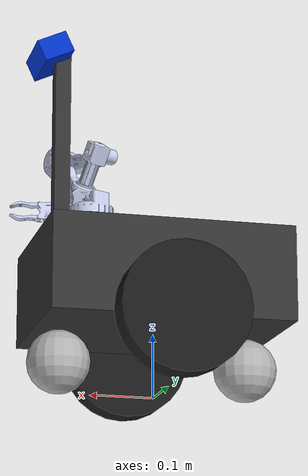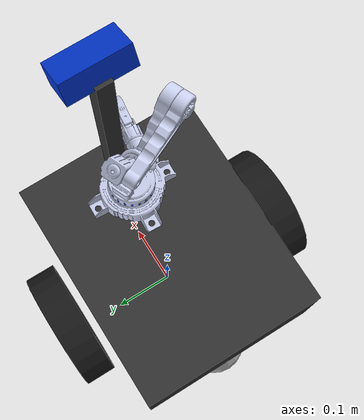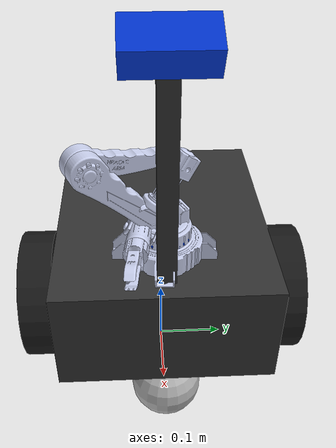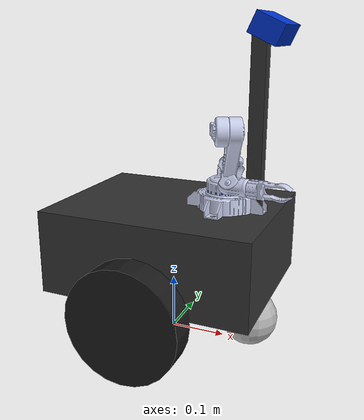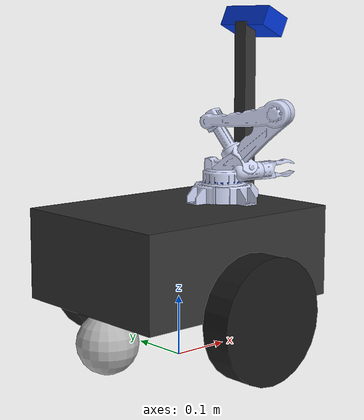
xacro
<?xml version="1.0"?>
<robot xmlns:xacro="http://www.ros.org/wiki/xacro" name="mobile_manipulator">

  <!-- Disable world and mock ros2_control from the arm xacro;
       we provide our own gz ros2_control block here. -->
  <xacro:arg name="include_world"        default="false"/>
  <xacro:arg name="include_ros2_control" default="false"/>

  <!-- Mobile base (kinematics + sensors + gz sensor plugins) -->
  <xacro:include filename="$(find mm_bringup)/urdf/mobile_base.urdf.xacro"/>

  <!-- Arm (kinematics only: no world link, no ros2_control block) -->
  <xacro:include filename="$(find robotic_arm_description)/urdf/robotic_arm.urdf.xacro"/>

  <joint name="arm_mount_joint" type="fixed">
    <origin xyz="0.10 0 0.029710" rpy="0.129355 -0.057284 -0.003711"/>
    <parent link="chassis_top_link"/>
    <child  link="base_link"/>
  </joint>

  <!-- ═══════ gz_ros2_control: single hardware interface for everything ═══ -->
  <ros2_control name="mobile_manipulator_gz" type="system">
    <hardware>
      <plugin>gz_ros2_control/GazeboSimSystem</plugin>
    </hardware>

    <!-- Drive wheels (diff_drive_controller uses velocity commands) -->
    <joint name="left_wheel_joint">
      <command_interface name="velocity"/>
      <state_interface name="position"/>
      <state_interface name="velocity"/>
    </joint>
    <joint name="right_wheel_joint">
      <command_interface name="velocity"/>
      <state_interface name="position"/>
      <state_interface name="velocity"/>
    </joint>

    <!-- Passive casters: state only so JSB publishes them -->
    <joint name="front_caster_joint">
      <state_interface name="position"/>
      <state_interface name="velocity"/>
    </joint>
    <joint name="rear_caster_joint">
      <state_interface name="position"/>
      <state_interface name="velocity"/>
    </joint>

    <!-- Arm joints (joint_trajectory_controller) -->
    <joint name="joint0">
      <command_interface name="position">
        <param name="min">-3.14</param><param name="max">3.14</param>
      </command_interface>
      <state_interface name="position"><param name="initial_value">0.0</param></state_interface>
      <state_interface name="velocity"><param name="initial_value">0.0</param></state_interface>
    </joint>
    <joint name="joint1">
      <command_interface name="position">
        <param name="min">-3.14</param><param name="max">3.14</param>
      </command_interface>
      <state_interface name="position"><param name="initial_value">0.0</param></state_interface>
      <state_interface name="velocity"><param name="initial_value">0.0</param></state_interface>
    </joint>
    <joint name="joint2">
      <command_interface name="position">
        <param name="min">-3.14</param><param name="max">3.14</param>
      </command_interface>
      <state_interface name="position"><param name="initial_value">0.0</param></state_interface>
      <state_interface name="velocity"><param name="initial_value">0.0</param></state_interface>
    </joint>
    <joint name="joint3">
      <command_interface name="position">
        <param name="min">-3.14</param><param name="max">3.14</param>
      </command_interface>
      <state_interface name="position"><param name="initial_value">0.0</param></state_interface>
      <state_interface name="velocity"><param name="initial_value">0.0</param></state_interface>
    </joint>
    <joint name="joint4">
      <command_interface name="position">
        <param name="min">-3.14</param><param name="max">3.14</param>
      </command_interface>
      <state_interface name="position"><param name="initial_value">0.0</param></state_interface>
      <state_interface name="velocity"><param name="initial_value">0.0</param></state_interface>
    </joint>
    <joint name="joint5">
      <command_interface name="position">
        <param name="min">-3.14</param><param name="max">3.14</param>
      </command_interface>
      <state_interface name="position"><param name="initial_value">0.0</param></state_interface>
      <state_interface name="velocity"><param name="initial_value">0.0</param></state_interface>
    </joint>

    <!-- Gripper drive finger (position controller) -->
    <joint name="joint6">
      <command_interface name="position">
        <param name="min">-0.093</param><param name="max">1.57</param>
      </command_interface>
      <state_interface name="position"><param name="initial_value">0.0</param></state_interface>
      <state_interface name="velocity"><param name="initial_value">0.0</param></state_interface>
    </joint>

    <!-- joint7: mimic of joint6 — state only, physics enforces the constraint -->
    <joint name="joint7">
      <state_interface name="position"><param name="initial_value">0.0</param></state_interface>
      <state_interface name="velocity"><param name="initial_value">0.0</param></state_interface>
    </joint>
  </ros2_control>

  <!-- Gazebo system plugin that activates gz_ros2_control -->
  <gazebo>
    <plugin filename="gz_ros2_control-system"
            name="gz_ros2_control::GazeboSimROS2ControlPlugin">
      <parameters>$(find mm_bringup)/config/ros2_controllers_gz.yaml</parameters>
    </plugin>
  </gazebo>

  <xacro:macro name="grasp_joint" params="color">
    <gazebo>
      <plugin filename="gz-sim-detachable-joint-system"
              name="gz::sim::systems::DetachableJoint">
        <parent_link>gripper_actuator</parent_link>
        <child_model>${color}_cube</child_model>
        <child_link>link</child_link>
        <attach_topic>/grasp/${color}_cube</attach_topic>
        <detach_topic>/release/${color}_cube</detach_topic>
      </plugin>
    </gazebo>
  </xacro:macro>

  <xacro:grasp_joint color="red"/>
  <xacro:grasp_joint color="green"/>
  <xacro:grasp_joint color="blue"/>

</robot>

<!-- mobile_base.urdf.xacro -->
<robot xmlns:xacro="http://www.ros.org/wiki/xacro">

  <!-- ─── chassis ─────────────────────────────────────────────────── -->
  <link name="base_footprint"/>

  <joint name="base_footprint_joint" type="fixed">
    <origin xyz="0 0 0.175" rpy="0 0 0"/>
    <parent link="base_footprint"/>
    <child  link="chassis_link"/>
  </joint>

  <link name="chassis_link">
    <visual>
      <origin xyz="0 0 0" rpy="0 0 0"/>
      <geometry><box size="0.38 0.30 0.15"/></geometry>
      <material name="dark_grey">
        <color rgba="0.2 0.2 0.2 1.0"/>
      </material>
    </visual>
    <collision>
      <origin xyz="0 0 0" rpy="0 0 0"/>
      <geometry><box size="0.38 0.30 0.15"/></geometry>
    </collision>
    <inertial>
      <mass value="20.0"/>
      <origin xyz="0 0 0" rpy="0 0 0"/>
      <inertia ixx="0.188" ixy="0" ixz="0"
               iyy="0.278" iyz="0"
               izz="0.391"/>
    </inertial>
  </link>

  <!-- ─── virtual chassis-top link (arm mounting point) ──────────── -->
  <joint name="chassis_top_joint" type="fixed">
    <origin xyz="0 0 0.075" rpy="0 0 0"/>
    <parent link="chassis_link"/>
    <child  link="chassis_top_link"/>
  </joint>
  <link name="chassis_top_link"/>

  <!-- ─── drive wheels ────────────────────────────────────────────── -->
  <!-- wheel_radius=0.10  width=0.05  mass=0.5 kg  axis along Y
       wheel center z = 0.175 - 0.075 = 0.100 m  (bottom at z=0) -->

  <joint name="left_wheel_joint" type="continuous">
    <origin xyz="0 0.190 -0.075" rpy="-1.5707963 0 0"/>
    <parent link="chassis_link"/>
    <child  link="left_wheel_link"/>
    <axis xyz="0 0 1"/>
    <dynamics damping="2.0" friction="0.5"/>
  </joint>
  <link name="left_wheel_link">
    <visual>
      <geometry><cylinder radius="0.10" length="0.05"/></geometry>
      <material name="black"><color rgba="0.1 0.1 0.1 1.0"/></material>
    </visual>
    <collision>
      <geometry><cylinder radius="0.10" length="0.05"/></geometry>
    </collision>
    <inertial>
      <mass value="0.5"/>
      <origin xyz="0 0 0"/>
      <!-- solid cylinder r=0.10 h=0.05 m=0.5:
           Ixx=Iyy = m(3r²+h²)/12 = 1.354e-3
           Izz     = mr²/2        = 2.500e-3
           Triangle check: 1.354e-3+1.354e-3 = 2.708e-3 > 2.500e-3 OK -->
      <inertia ixx="1.354e-3" ixy="0" ixz="0"
               iyy="1.354e-3" iyz="0"
               izz="2.500e-3"/>
    </inertial>
  </link>

  <joint name="right_wheel_joint" type="continuous">
    <origin xyz="0 -0.190 -0.075" rpy="-1.5707963 0 0"/>
    <parent link="chassis_link"/>
    <child  link="right_wheel_link"/>
    <axis xyz="0 0 1"/>
    <dynamics damping="2.0" friction="0.5"/>
  </joint>
  <link name="right_wheel_link">
    <visual>
      <geometry><cylinder radius="0.10" length="0.05"/></geometry>
      <material name="black"/>
    </visual>
    <collision>
      <geometry><cylinder radius="0.10" length="0.05"/></geometry>
    </collision>
    <inertial>
      <mass value="0.5"/>
      <origin xyz="0 0 0"/>
      <inertia ixx="1.354e-3" ixy="0" ixz="0"
               iyy="1.354e-3" iyz="0"
               izz="2.500e-3"/>
    </inertial>
  </link>

  <!-- ─── passive casters (ball, zero friction) ────────────────────── -->
  <!-- caster_radius=0.05  center z = 0.175-0.125 = 0.050 m  (bottom at z=0) -->

  <joint name="front_caster_joint" type="continuous">
    <origin xyz="0.15 0 -0.125" rpy="0 0 0"/>
    <parent link="chassis_link"/>
    <child  link="front_caster_link"/>
    <axis xyz="1 0 0"/>
  </joint>
  <link name="front_caster_link">
    <visual>
      <geometry><sphere radius="0.05"/></geometry>
      <material name="light_grey"><color rgba="0.7 0.7 0.7 1.0"/></material>
    </visual>
    <collision>
      <geometry><sphere radius="0.05"/></geometry>
    </collision>
    <inertial>
      <mass value="0.1"/>
      <origin xyz="0 0 0"/>
      <inertia ixx="1.0e-4" ixy="0" ixz="0"
               iyy="1.0e-4" iyz="0"
               izz="1.0e-4"/>
    </inertial>
  </link>

  <joint name="rear_caster_joint" type="continuous">
    <origin xyz="-0.15 0 -0.125" rpy="0 0 0"/>
    <parent link="chassis_link"/>
    <child  link="rear_caster_link"/>
    <axis xyz="1 0 0"/>
  </joint>
  <link name="rear_caster_link">
    <visual>
      <geometry><sphere radius="0.05"/></geometry>
      <material name="light_grey"/>
    </visual>
    <collision>
      <geometry><sphere radius="0.05"/></geometry>
    </collision>
    <inertial>
      <mass value="0.1"/>
      <origin xyz="0 0 0"/>
      <inertia ixx="1.0e-4" ixy="0" ixz="0"
               iyy="1.0e-4" iyz="0"
               izz="1.0e-4"/>
    </inertial>
  </link>

  <!-- ─── LiDAR ─────────────────────────────────────────────────────── -->
  <joint name="lidar_joint" type="fixed">
    <origin xyz="0.10 0 0.09" rpy="0 0 0"/>
    <parent link="chassis_link"/>
    <child  link="lidar_link"/>
  </joint>
  <link name="lidar_link">
    <visual>
      <geometry><cylinder radius="0.035" length="0.04"/></geometry>
      <material name="blue"><color rgba="0.0 0.2 0.8 1.0"/></material>
    </visual>
    <inertial>
      <mass value="0.1"/>
      <origin xyz="0 0 0"/>
      <inertia ixx="1e-5" ixy="0" ixz="0" iyy="1e-5" iyz="0" izz="1e-5"/>
    </inertial>
  </link>

  <!-- ─── IMU ───────────────────────────────────────────────────────── -->
  <joint name="imu_joint" type="fixed">
    <origin xyz="0 0 0" rpy="0 0 0"/>
    <parent link="chassis_link"/>
    <child  link="imu_link"/>
  </joint>
  <link name="imu_link">
    <inertial>
      <mass value="0.01"/>
      <origin xyz="0 0 0"/>
      <inertia ixx="1e-6" ixy="0" ixz="0" iyy="1e-6" iyz="0" izz="1e-6"/>
    </inertial>
  </link>

  <!-- ─── RGB-D camera on a forward mast ──────────────────────────── -->
  <joint name="camera_mast_joint" type="fixed">
    <origin xyz="0.15 0 0.075" rpy="0 0 0"/>
    <parent link="chassis_link"/>
    <child  link="camera_mast_link"/>
  </joint>
  <link name="camera_mast_link">
    <visual>
      <origin xyz="0 0 0.15"/>
      <geometry><box size="0.025 0.025 0.30"/></geometry>
      <material name="dark_grey"/>
    </visual>
    <inertial>
      <mass value="0.1"/>
      <origin xyz="0 0 0.15"/>
      <!-- 0.10 kg box 0.025×0.025×0.30: Ixx=Iyy=m(y²+z²)/12≈7.6e-4 -->
      <inertia ixx="7.6e-4" ixy="0" ixz="0" iyy="7.6e-4" iyz="0" izz="1e-5"/>
    </inertial>
  </link>

  <!-- camera_link: top of mast (z=0.55m), tilted 25° down to see table surface -->
  <joint name="camera_joint" type="fixed">
    <origin xyz="0.02 0 0.30" rpy="0 0.436 0"/>
    <parent link="camera_mast_link"/>
    <child  link="camera_link"/>
  </joint>
  <link name="camera_link">
    <visual>
      <geometry><box size="0.05 0.10 0.035"/></geometry>
      <material name="blue"/>
    </visual>
    <inertial>
      <mass value="0.1"/>
      <origin xyz="0 0 0"/>
      <inertia ixx="1e-4" ixy="0" ixz="0" iyy="1e-4" iyz="0" izz="1e-4"/>
    </inertial>
  </link>

  <!-- camera_optical_link: REP-103 optical frame (z=forward, x=right, y=down) -->
  <joint name="camera_optical_joint" type="fixed">
    <origin xyz="0 0 0" rpy="-1.5707963 0 -1.5707963"/>
    <parent link="camera_link"/>
    <child  link="camera_optical_link"/>
  </joint>
  <link name="camera_optical_link"/>

  <!-- ═══════════════════════════════════════════════════════════════
       Gazebo Harmonic plugins
  ═══════════════════════════════════════════════════════════════════ -->

  <!-- Caster wheels: zero friction so they slide freely -->
  <gazebo reference="front_caster_link">
    <mu1>0.0</mu1>
    <mu2>0.0</mu2>
  </gazebo>
  <gazebo reference="rear_caster_link">
    <mu1>0.0</mu1>
    <mu2>0.0</mu2>
  </gazebo>

  <!-- Drive wheel friction (good traction) -->
  <gazebo reference="left_wheel_link">
    <mu1>1.0</mu1>
    <mu2>1.0</mu2>
  </gazebo>
  <gazebo reference="right_wheel_link">
    <mu1>1.0</mu1>
    <mu2>1.0</mu2>
  </gazebo>

  <!-- 360° 2-D LiDAR → /scan -->
  <gazebo reference="lidar_link">
    <sensor name="lidar_sensor" type="gpu_lidar">
      <gz_frame_id>lidar_link</gz_frame_id>
      <topic>/scan</topic>
      <update_rate>10</update_rate>
      <lidar>
        <scan>
          <horizontal>
            <samples>360</samples>
            <resolution>1</resolution>
            <min_angle>-3.14159265</min_angle>
            <max_angle>3.14159265</max_angle>
          </horizontal>
        </scan>
        <range>
          <min>0.15</min>
          <max>10.0</max>
          <resolution>0.01</resolution>
        </range>
        <noise>
          <type>gaussian</type>
          <mean>0.0</mean>
          <stddev>0.01</stddev>
        </noise>
      </lidar>
      <always_on>true</always_on>
      <visualize>false</visualize>
    </sensor>
  </gazebo>

  <!-- IMU → /imu -->
  <gazebo reference="imu_link">
    <sensor name="imu_sensor" type="imu">
      <gz_frame_id>imu_link</gz_frame_id>
      <topic>/imu</topic>
      <update_rate>100</update_rate>
      <always_on>true</always_on>
    </sensor>
  </gazebo>

  <!-- RGB-D camera → /camera/* -->
  <gazebo reference="camera_link">
    <sensor name="rgbd_camera" type="rgbd_camera">
      <gz_frame_id>camera_optical_link</gz_frame_id>
      <topic>/camera</topic>
      <update_rate>15</update_rate>
      <camera>
        <horizontal_fov>1.047</horizontal_fov>
        <image>
          <width>640</width>
          <height>480</height>
          <format>RGB_INT8</format>
        </image>
        <clip>
          <near>0.1</near>
          <far>10.0</far>
        </clip>
      </camera>
      <always_on>true</always_on>
      <visualize>false</visualize>
    </sensor>
  </gazebo>

</robot>

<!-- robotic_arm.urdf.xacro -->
<robot xmlns:xacro="http://www.ros.org/wiki/xacro" name="robotic_arm">

  <!-- Composability args: set to false when including in a combined robot -->
  <xacro:arg name="include_world"        default="true"/>
  <xacro:arg name="include_ros2_control" default="true"/>

  <xacro:if value="$(arg include_world)">
  <!-- ═══════ world ══════════════════════════════════════════════ -->
  <!-- Massless anchor so RViz/Nav2 have a stable "world" fixed frame. -->
  <link name="world"/>

  <joint name="world_joint" type="fixed">
    <origin xyz="0 0 0.029710" rpy="0.129355 -0.057284 -0.003711"/>
    <parent link="world"/>
    <child  link="base_link"/>
  </joint>
  </xacro:if>

  <!-- ═══════ base_link ═══════════════════════════════════════════ -->
  <link name="base_link">
    <inertial>
      <!-- COM is in SW world coordinates — subtract (0.70796, −1.3272, 0.9075)
           before using this link in a dynamics simulation. -->
      <origin xyz="0.70723 0.89479 1.3289" rpy="0 0 0"/>
      <mass value="0.19084"/>
      <inertia ixx="0.00014713" ixy="6.8937E-06"  ixz="-8.9675E-07"
               iyy="0.00026594" iyz="-1.5506E-05" izz="0.00014875"/>
    </inertial>
    <!-- Visual/collision shifted by −(old joint0 xyz) so the base plate mesh
         renders adjacent to the arm, which now lives at world origin. -->
    <visual>
      <origin xyz="-0.70796 1.3272 -0.9075" rpy="0 0 0"/>
      <geometry>
        <mesh filename="package://robotic_arm_description/meshes/base_link.STL"/>
      </geometry>
      <material name="arm_color">
        <color rgba="0.79216 0.81961 0.93333 1"/>
      </material>
    </visual>
    <collision>
      <origin xyz="-0.70796 1.3272 -0.9075" rpy="0 0 0"/>
      <geometry>
        <mesh filename="package://robotic_arm_description/meshes/base_link.STL"/>
      </geometry>
    </collision>
  </link>

  <!-- ═══════ lower_arm ══════════════════════════════════════════ -->
  <link name="lower_arm">
    <inertial>
      <origin xyz="-0.034789 0.052024 4.4209E-05" rpy="0 0 0"/>
      <mass value="0.19613"/>
      <inertia ixx="0.00038821" ixy="0.00032912"  ixz="5.654E-07"
               iyy="0.00038835" iyz="-6.0057E-07" izz="0.00072024"/>
    </inertial>
    <visual>
      <origin xyz="0 0 0" rpy="0 0 0"/>
      <geometry>
        <mesh filename="package://robotic_arm_description/meshes/lower_arm.STL"/>
      </geometry>
      <material name="arm_color">
        <color rgba="0.79216 0.81961 0.93333 1"/>
      </material>
    </visual>
    <collision>
      <origin xyz="0 0 0" rpy="0 0 0"/>
      <geometry>
        <mesh filename="package://robotic_arm_description/meshes/lower_arm.STL"/>
      </geometry>
    </collision>
  </link>

  <joint name="joint0" type="revolute">
    <origin xyz="0 0 0" rpy="1.6757 0.094954 1.9904"/>
    <parent link="base_link"/>
    <child  link="lower_arm"/>
    <axis xyz="0 1 0"/>
    <limit lower="-3.14" upper="3.14" effort="10" velocity="1"/>
  </joint>

  <!-- ═══════ upper_arm ══════════════════════════════════════════ -->
  <link name="upper_arm">
    <inertial>
      <origin xyz="0.030278 0.032273 -0.019925" rpy="0 0 0"/>
      <mass value="0.081835"/>
      <inertia ixx="9.6287E-05"  ixy="-7.8192E-05" ixz="-1.6357E-06"
               iyy="7.9895E-05"  iyz="-1.7788E-06"  izz="0.00017026"/>
    </inertial>
    <visual>
      <origin xyz="0 0 0" rpy="0 0 0"/>
      <geometry>
        <mesh filename="package://robotic_arm_description/meshes/upper_arm.STL"/>
      </geometry>
      <material name="arm_color">
        <color rgba="0.79216 0.81961 0.93333 1"/>
      </material>
    </visual>
    <collision>
      <origin xyz="0 0 0" rpy="0 0 0"/>
      <geometry>
        <mesh filename="package://robotic_arm_description/meshes/upper_arm.STL"/>
      </geometry>
    </collision>
  </link>

  <!-- joint1 — lower_arm → upper_arm  UNCHANGED -->
  <joint name="joint1" type="revolute">
    <origin xyz="-0.1 0.12129 0" rpy="0 0 -0.97771"/>
    <parent link="lower_arm"/>
    <child  link="upper_arm"/>
    <axis xyz="0 0 1"/>
    <limit lower="-3.14" upper="3.14" effort="10" velocity="1"/>
  </joint>

  <!-- ═══════ shoulder_drive ══════════════════════════════════════ -->
  <link name="shoulder_drive">
    <inertial>
      <origin xyz="0.0053519 -4.4717E-05 0.010345" rpy="0 0 0"/>
      <mass value="0.036284"/>
      <inertia ixx="1.6274E-05"  ixy="-5.7101E-10" ixz="2.109E-07"
               iyy="1.6305E-05"  iyz="-1.2692E-08"  izz="4.537E-06"/>
    </inertial>
    <visual>
      <origin xyz="0 0 0" rpy="0 0 0"/>
      <geometry>
        <mesh filename="package://robotic_arm_description/meshes/shoulder_drive.STL"/>
      </geometry>
      <material name="arm_color">
        <color rgba="0.79216 0.81961 0.93333 1"/>
      </material>
    </visual>
    <collision>
      <origin xyz="0 0 0" rpy="0 0 0"/>
      <geometry>
        <mesh filename="package://robotic_arm_description/meshes/shoulder_drive.STL"/>
      </geometry>
    </collision>
  </link>

  <!-- joint2 — upper_arm → shoulder_drive  UNCHANGED -->
  <joint name="joint2" type="revolute">
    <origin xyz="0.08 0.09 0" rpy="1.9556 -1.5708 0"/>
    <parent link="upper_arm"/>
    <child  link="shoulder_drive"/>
    <axis xyz="1 0 0"/>
    <limit lower="-3.14" upper="3.14" effort="10" velocity="1"/>
  </joint>

  <!-- ═══════ rotary_yoke ══════════════════════════════════════════ -->
  <link name="rotary_yoke">
    <inertial>
      <origin xyz="0.0034544 -8.8589E-10 -1.5216E-10" rpy="0 0 0"/>
      <mass value="0.015723"/>
      <inertia ixx="4.9761E-06"  ixy="2.7011E-13"  ixz="1.3689E-13"
               iyy="8.6886E-06"  iyz="1.0867E-12"   izz="6.6823E-06"/>
    </inertial>
    <visual>
      <origin xyz="0 0 0" rpy="0 0 0"/>
      <geometry>
        <mesh filename="package://robotic_arm_description/meshes/rotary_yoke.STL"/>
      </geometry>
      <material name="arm_color">
        <color rgba="0.79216 0.81961 0.93333 1"/>
      </material>
    </visual>
    <collision>
      <origin xyz="0 0 0" rpy="0 0 0"/>
      <geometry>
        <mesh filename="package://robotic_arm_description/meshes/rotary_yoke.STL"/>
      </geometry>
    </collision>
  </link>

  <!-- joint3 — shoulder_drive → rotary_yoke  UNCHANGED -->
  <joint name="joint3" type="revolute">
    <origin xyz="0.005 0 0.077514" rpy="1.1002 1.5708 0"/>
    <parent link="shoulder_drive"/>
    <child  link="rotary_yoke"/>
    <axis xyz="1 0 0"/>
    <limit lower="-3.14" upper="3.14" effort="10" velocity="1"/>
  </joint>

  <!-- ═══════ wrist_module ══════════════════════════════════════════ -->
  <link name="wrist_module">
    <inertial>
      <origin xyz="0.0052933 6.3561E-10 3.6458E-10" rpy="0 0 0"/>
      <mass value="0.034187"/>
      <inertia ixx="3.7152E-06"  ixy="4.4265E-13"   ixz="1.2545E-13"
               iyy="8.9897E-06"  iyz="-9.6955E-13"  izz="9.0316E-06"/>
    </inertial>
    <visual>
      <origin xyz="0 0 0" rpy="0 0 0"/>
      <geometry>
        <mesh filename="package://robotic_arm_description/meshes/wrist_module.STL"/>
      </geometry>
      <material name="arm_color">
        <color rgba="0.79216 0.81961 0.93333 1"/>
      </material>
    </visual>
    <collision>
      <origin xyz="0 0 0" rpy="0 0 0"/>
      <geometry>
        <mesh filename="package://robotic_arm_description/meshes/wrist_module.STL"/>
      </geometry>
    </collision>
  </link>

  <!-- joint4 — rotary_yoke → wrist_module  UNCHANGED -->
  <joint name="joint4" type="revolute">
    <origin xyz="-0.025486 0 0" rpy="0 0 1.8687"/>
    <parent link="rotary_yoke"/>
    <child  link="wrist_module"/>
    <axis xyz="0 0 1"/>
    <limit lower="-3.14" upper="3.14" effort="8" velocity="1"/>
  </joint>

  <!-- ═══════ gripper_actuator ══════════════════════════════════════ -->
  <link name="gripper_actuator">
    <inertial>
      <origin xyz="-3.7917E-09 -9.0172E-09 0.0059505" rpy="0 0 0"/>
      <mass value="0.015789"/>
      <inertia ixx="1.6581E-06" ixy="4.1866E-12"  ixz="5.5925E-13"
               iyy="1.6959E-06" iyz="8.6177E-13"   izz="1.8592E-06"/>
    </inertial>
    <visual>
      <origin xyz="0 0 0" rpy="0 0 0"/>
      <geometry>
        <mesh filename="package://robotic_arm_description/meshes/gripper_actuator.STL"/>
      </geometry>
      <material name="arm_color">
        <color rgba="0.79216 0.81961 0.93333 1"/>
      </material>
    </visual>
    <collision>
      <origin xyz="0 0 0" rpy="0 0 0"/>
      <geometry>
        <mesh filename="package://robotic_arm_description/meshes/gripper_actuator.STL"/>
      </geometry>
    </collision>
  </link>

  <!-- joint5 — wrist_module → gripper_actuator  UNCHANGED -->
  <joint name="joint5" type="revolute">
    <origin xyz="0.03356 0 0" rpy="-1.5708 0.5658 -1.5708"/>
    <parent link="wrist_module"/>
    <child  link="gripper_actuator"/>
    <axis xyz="0 0 1"/>
    <limit lower="-3.14" upper="3.14" effort="10" velocity="1"/>
  </joint>

  <!-- ═══════ gripper_1 (left finger) ══════════════════════════════ -->
  <link name="gripper_1">
    <inertial>
      <origin xyz="0.018895 0.0012108 5.4008E-08" rpy="0 0 0"/>
      <mass value="0.0029088"/>
      <inertia ixx="5.5054E-08"  ixy="-3.6466E-08" ixz="-5.9482E-12"
               iyy="5.6195E-07"  iyz="6.3354E-14"   izz="5.2896E-07"/>
    </inertial>
    <visual>
      <origin xyz="0 0 0" rpy="0 0 0"/>
      <geometry>
        <mesh filename="package://robotic_arm_description/meshes/gripper_1.STL"/>
      </geometry>
      <material name="arm_color">
        <color rgba="0.79216 0.81961 0.93333 1"/>
      </material>
    </visual>
    <collision>
      <origin xyz="0 0 0" rpy="0 0 0"/>
      <geometry>
        <mesh filename="package://robotic_arm_description/meshes/gripper_1.STL"/>
      </geometry>
    </collision>
  </link>

  <joint name="joint6" type="revolute">
    <origin xyz="-0.011 0 0.02344" rpy="1.5708 -1.5034 0"/>
    <parent link="gripper_actuator"/>
    <child  link="gripper_1"/>
    <axis xyz="0 0 1"/>
    <limit lower="-0.093" upper="1.57" effort="2" velocity="1"/>
  </joint>

  <!-- ═══════ gripper_2 (right finger) ══════════════════════════════ -->
  <link name="gripper_2">
    <inertial>
      <origin xyz="0.018895 0.0012108 5.2626E-08" rpy="0 0 0"/>
      <mass value="0.0029088"/>
      <inertia ixx="5.5055E-08"  ixy="-3.6466E-08" ixz="-5.9756E-12"
               iyy="5.6195E-07"  iyz="3.1914E-14"   izz="5.2896E-07"/>
    </inertial>
    <visual>
      <origin xyz="0 0 0" rpy="0 0 0"/>
      <geometry>
        <mesh filename="package://robotic_arm_description/meshes/gripper_2.STL"/>
      </geometry>
      <material name="arm_color">
        <color rgba="0.79216 0.81961 0.93333 1"/>
      </material>
    </visual>
    <collision>
      <origin xyz="0 0 0" rpy="0 0 0"/>
      <geometry>
        <mesh filename="package://robotic_arm_description/meshes/gripper_2.STL"/>
      </geometry>
    </collision>
  </link>

  <joint name="joint7" type="revolute">
    <origin xyz="0.011 0 0.02344" rpy="1.5708 -1.5034 3.1416"/>
    <parent link="gripper_actuator"/>
    <child  link="gripper_2"/>
    <axis xyz="0 0 1"/>
    <limit lower="-0.093" upper="1.57" effort="2" velocity="1"/>
    <mimic joint="joint6" multiplier="1" offset="0"/>
  </joint>

  <xacro:if value="$(arg include_ros2_control)">
  <ros2_control name="robotic_arm_system" type="system">
    <hardware>
      <plugin>mock_components/GenericSystem</plugin>
    </hardware>

    <joint name="joint0">
      <command_interface name="position">
        <param name="min">-3.14</param><param name="max">3.14</param>
      </command_interface>
      <state_interface name="position"><param name="initial_value">0.0</param></state_interface>
      <state_interface name="velocity"><param name="initial_value">0.0</param></state_interface>
    </joint>
    <joint name="joint1">
      <command_interface name="position">
        <param name="min">-3.14</param><param name="max">3.14</param>
      </command_interface>
      <state_interface name="position"><param name="initial_value">0.0</param></state_interface>
      <state_interface name="velocity"><param name="initial_value">0.0</param></state_interface>
    </joint>
    <joint name="joint2">
      <command_interface name="position">
        <param name="min">-3.14</param><param name="max">3.14</param>
      </command_interface>
      <state_interface name="position"><param name="initial_value">0.0</param></state_interface>
      <state_interface name="velocity"><param name="initial_value">0.0</param></state_interface>
    </joint>
    <joint name="joint3">
      <command_interface name="position">
        <param name="min">-3.14</param><param name="max">3.14</param>
      </command_interface>
      <state_interface name="position"><param name="initial_value">0.0</param></state_interface>
      <state_interface name="velocity"><param name="initial_value">0.0</param></state_interface>
    </joint>
    <joint name="joint4">
      <command_interface name="position">
        <param name="min">-3.14</param><param name="max">3.14</param>
      </command_interface>
      <state_interface name="position"><param name="initial_value">0.0</param></state_interface>
      <state_interface name="velocity"><param name="initial_value">0.0</param></state_interface>
    </joint>
    <joint name="joint5">
      <command_interface name="position">
        <param name="min">-3.14</param><param name="max">3.14</param>
      </command_interface>
      <state_interface name="position"><param name="initial_value">0.0</param></state_interface>
      <state_interface name="velocity"><param name="initial_value">0.0</param></state_interface>
    </joint>
    <joint name="joint6">
      <command_interface name="position">
        <param name="min">-0.093</param><param name="max">1.57</param>
      </command_interface>
      <state_interface name="position"><param name="initial_value">0.0</param></state_interface>
      <state_interface name="velocity"><param name="initial_value">0.0</param></state_interface>
    </joint>
    <!-- joint7 is a URDF mimic joint: ros2_control 4.x forbids command interfaces on mimic joints. -->
    <joint name="joint7">
      <state_interface name="position"><param name="initial_value">0.0</param></state_interface>
      <state_interface name="velocity"><param name="initial_value">0.0</param></state_interface>
    </joint>
  </ros2_control>
  </xacro:if>

</robot>
